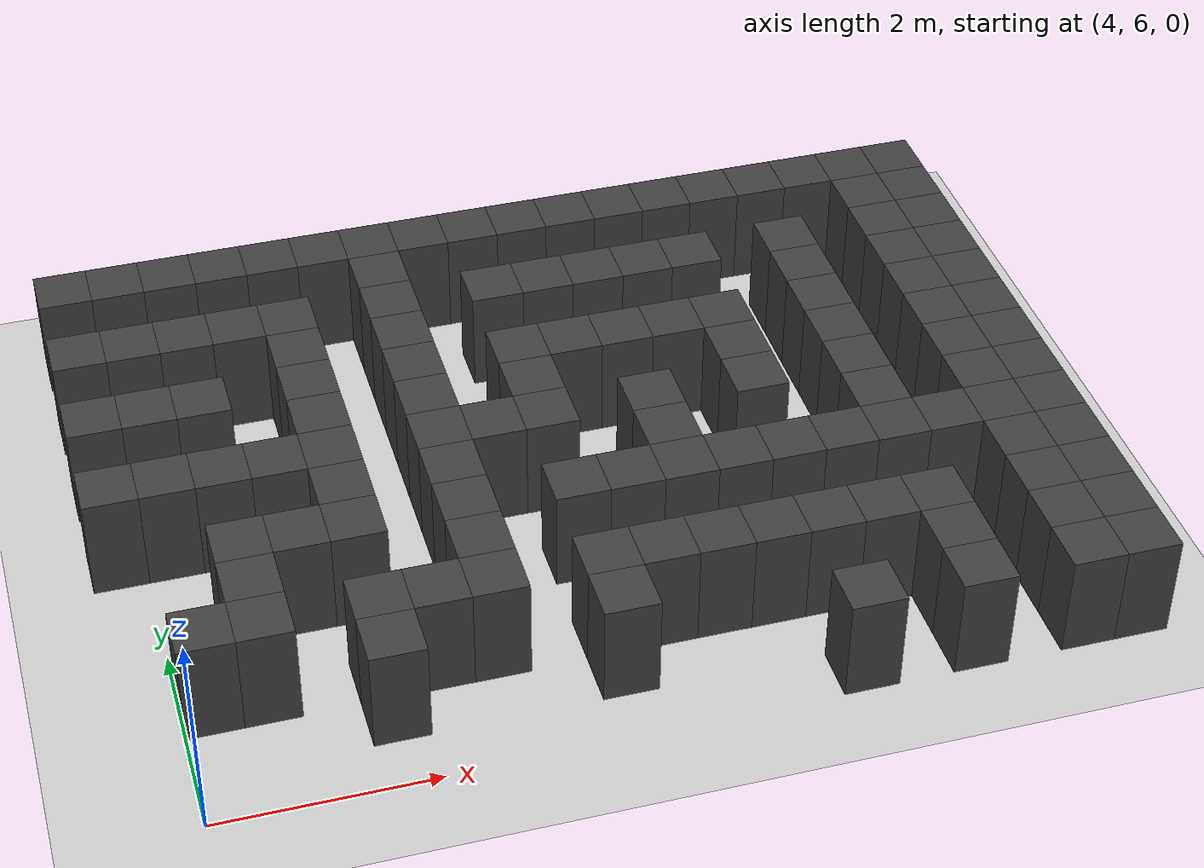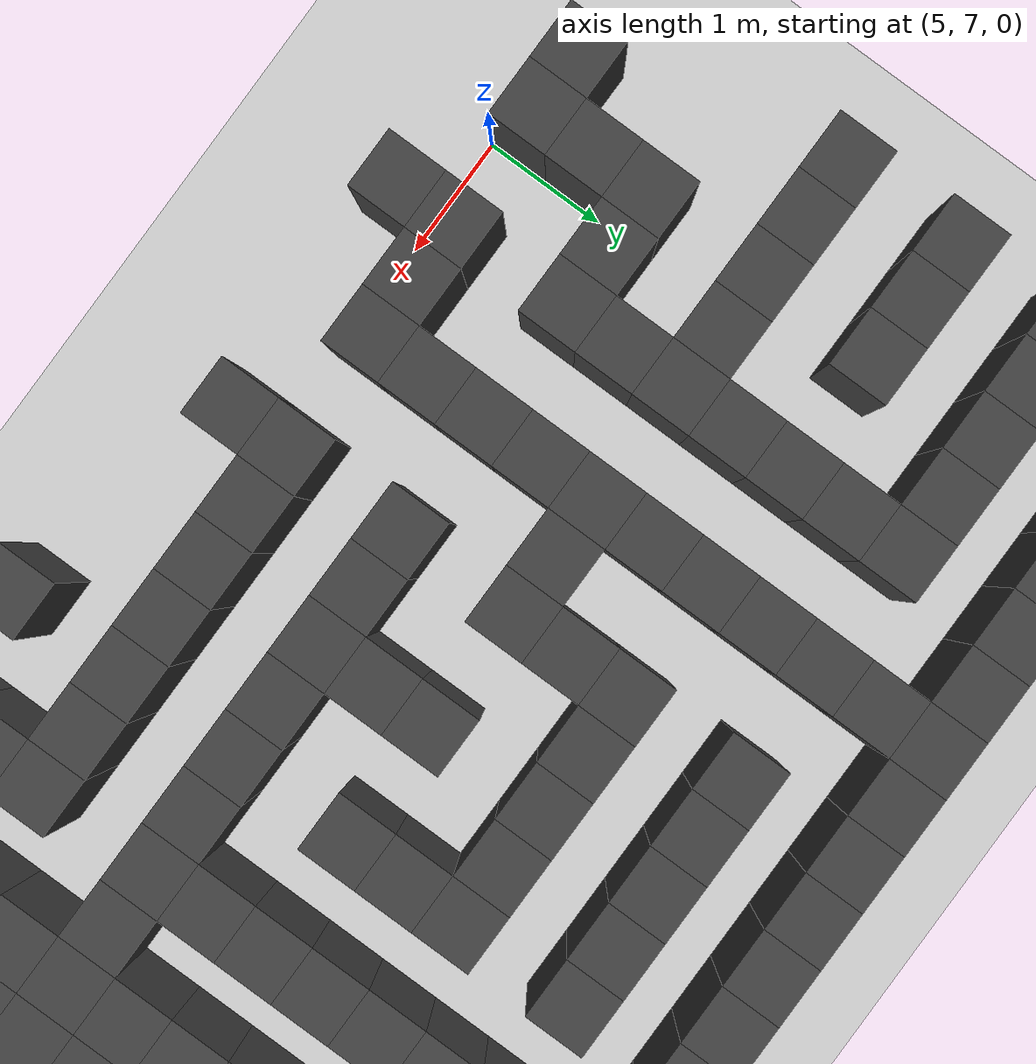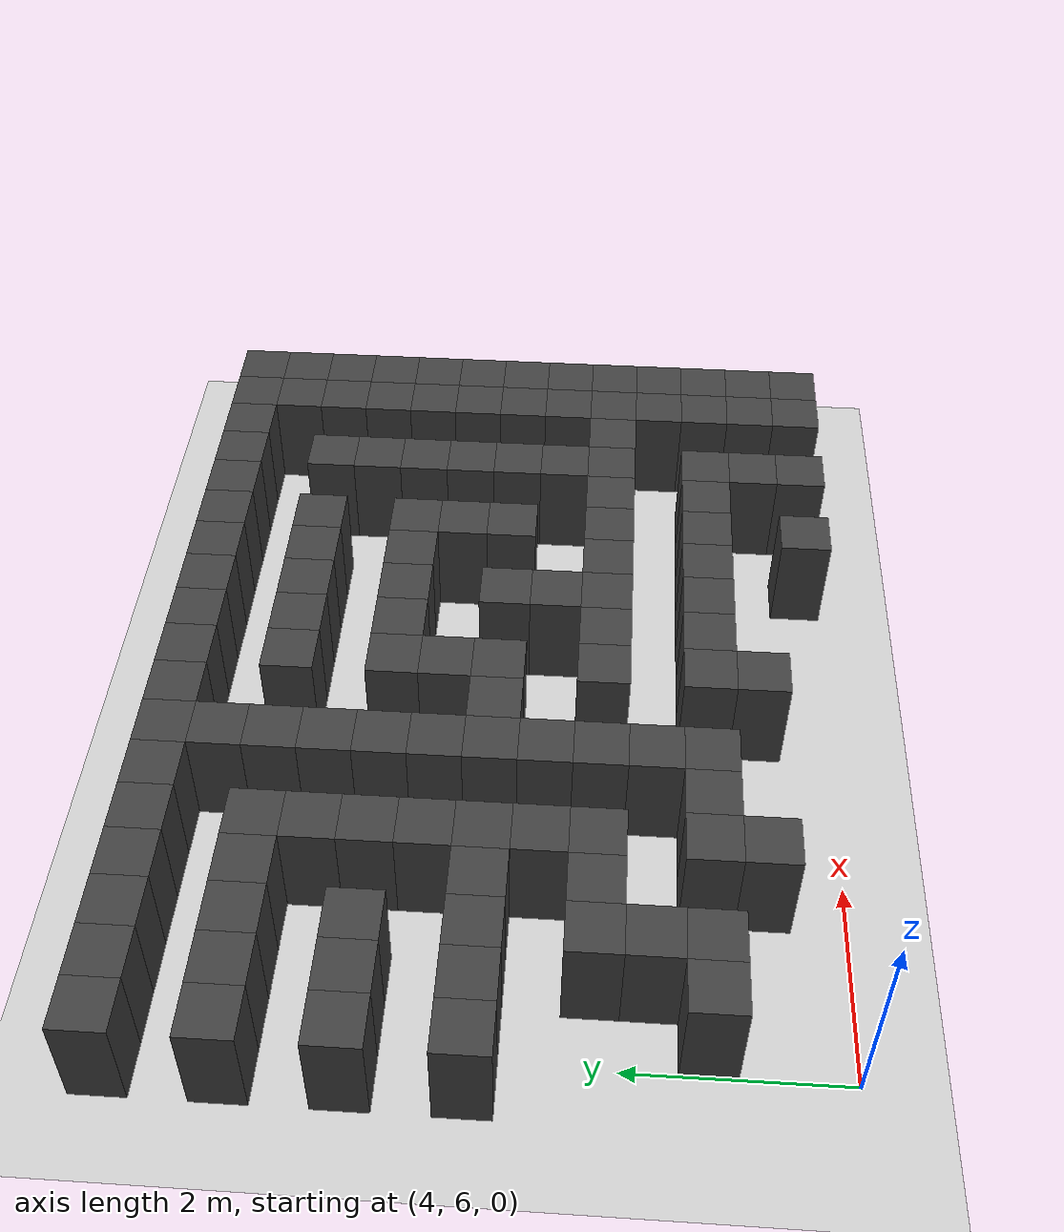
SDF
<sdf version="1.7">
 <world name="map_19217">
  <model name="ground_plane">
   <static>true</static>
   <link name="link">
    <collision name="collision">
     <geometry><plane><normal>0 0 1</normal><size>200 200</size></plane></geometry>
    </collision>
    <visual name="visual">
     <geometry><plane><normal>0 0 1</normal><size>200 200</size></plane></geometry>
     <material><ambient>0.8 0.8 0.8 1</ambient><diffuse>0.8 0.8 0.8 1</diffuse></material>
    </visual>
   </link>
  </model>
  <model name="maze_environment">
   <static>true</static>
   <link name="wall_32">
    <pose>3.750 12.250 0.500 0 0 0</pose>
    <collision name="col"><geometry><box><size>0.5 0.5 1.0</size></box></geometry></collision>
    <visual name="vis">
     <geometry><box><size>0.5 0.5 1.0</size></box></geometry>
     <material><ambient>0.15 0.15 0.15 1</ambient><diffuse>0.25 0.25 0.25 1</diffuse></material>
    </visual>
   </link>
   <link name="wall_33">
    <pose>4.250 12.250 0.500 0 0 0</pose>
    <collision name="col"><geometry><box><size>0.5 0.5 1.0</size></box></geometry></collision>
    <visual name="vis">
     <geometry><box><size>0.5 0.5 1.0</size></box></geometry>
     <material><ambient>0.15 0.15 0.15 1</ambient><diffuse>0.25 0.25 0.25 1</diffuse></material>
    </visual>
   </link>
   <link name="wall_34">
    <pose>4.750 12.250 0.500 0 0 0</pose>
    <collision name="col"><geometry><box><size>0.5 0.5 1.0</size></box></geometry></collision>
    <visual name="vis">
     <geometry><box><size>0.5 0.5 1.0</size></box></geometry>
     <material><ambient>0.15 0.15 0.15 1</ambient><diffuse>0.25 0.25 0.25 1</diffuse></material>
    </visual>
   </link>
   <link name="wall_35">
    <pose>5.250 12.250 0.500 0 0 0</pose>
    <collision name="col"><geometry><box><size>0.5 0.5 1.0</size></box></geometry></collision>
    <visual name="vis">
     <geometry><box><size>0.5 0.5 1.0</size></box></geometry>
     <material><ambient>0.15 0.15 0.15 1</ambient><diffuse>0.25 0.25 0.25 1</diffuse></material>
    </visual>
   </link>
   <link name="wall_36">
    <pose>5.750 12.250 0.500 0 0 0</pose>
    <collision name="col"><geometry><box><size>0.5 0.5 1.0</size></box></geometry></collision>
    <visual name="vis">
     <geometry><box><size>0.5 0.5 1.0</size></box></geometry>
     <material><ambient>0.15 0.15 0.15 1</ambient><diffuse>0.25 0.25 0.25 1</diffuse></material>
    </visual>
   </link>
   <link name="wall_37">
    <pose>6.250 12.250 0.500 0 0 0</pose>
    <collision name="col"><geometry><box><size>0.5 0.5 1.0</size></box></geometry></collision>
    <visual name="vis">
     <geometry><box><size>0.5 0.5 1.0</size></box></geometry>
     <material><ambient>0.15 0.15 0.15 1</ambient><diffuse>0.25 0.25 0.25 1</diffuse></material>
    </visual>
   </link>
   <link name="wall_38">
    <pose>6.750 12.250 0.500 0 0 0</pose>
    <collision name="col"><geometry><box><size>0.5 0.5 1.0</size></box></geometry></collision>
    <visual name="vis">
     <geometry><box><size>0.5 0.5 1.0</size></box></geometry>
     <material><ambient>0.15 0.15 0.15 1</ambient><diffuse>0.25 0.25 0.25 1</diffuse></material>
    </visual>
   </link>
   <link name="wall_39">
    <pose>7.250 12.250 0.500 0 0 0</pose>
    <collision name="col"><geometry><box><size>0.5 0.5 1.0</size></box></geometry></collision>
    <visual name="vis">
     <geometry><box><size>0.5 0.5 1.0</size></box></geometry>
     <material><ambient>0.15 0.15 0.15 1</ambient><diffuse>0.25 0.25 0.25 1</diffuse></material>
    </visual>
   </link>
   <link name="wall_40">
    <pose>7.750 12.250 0.500 0 0 0</pose>
    <collision name="col"><geometry><box><size>0.5 0.5 1.0</size></box></geometry></collision>
    <visual name="vis">
     <geometry><box><size>0.5 0.5 1.0</size></box></geometry>
     <material><ambient>0.15 0.15 0.15 1</ambient><diffuse>0.25 0.25 0.25 1</diffuse></material>
    </visual>
   </link>
   <link name="wall_41">
    <pose>8.250 12.250 0.500 0 0 0</pose>
    <collision name="col"><geometry><box><size>0.5 0.5 1.0</size></box></geometry></collision>
    <visual name="vis">
     <geometry><box><size>0.5 0.5 1.0</size></box></geometry>
     <material><ambient>0.15 0.15 0.15 1</ambient><diffuse>0.25 0.25 0.25 1</diffuse></material>
    </visual>
   </link>
   <link name="wall_42">
    <pose>8.750 12.250 0.500 0 0 0</pose>
    <collision name="col"><geometry><box><size>0.5 0.5 1.0</size></box></geometry></collision>
    <visual name="vis">
     <geometry><box><size>0.5 0.5 1.0</size></box></geometry>
     <material><ambient>0.15 0.15 0.15 1</ambient><diffuse>0.25 0.25 0.25 1</diffuse></material>
    </visual>
   </link>
   <link name="wall_43">
    <pose>9.250 12.250 0.500 0 0 0</pose>
    <collision name="col"><geometry><box><size>0.5 0.5 1.0</size></box></geometry></collision>
    <visual name="vis">
     <geometry><box><size>0.5 0.5 1.0</size></box></geometry>
     <material><ambient>0.15 0.15 0.15 1</ambient><diffuse>0.25 0.25 0.25 1</diffuse></material>
    </visual>
   </link>
   <link name="wall_44">
    <pose>9.750 12.250 0.500 0 0 0</pose>
    <collision name="col"><geometry><box><size>0.5 0.5 1.0</size></box></geometry></collision>
    <visual name="vis">
     <geometry><box><size>0.5 0.5 1.0</size></box></geometry>
     <material><ambient>0.15 0.15 0.15 1</ambient><diffuse>0.25 0.25 0.25 1</diffuse></material>
    </visual>
   </link>
   <link name="wall_45">
    <pose>10.250 12.250 0.500 0 0 0</pose>
    <collision name="col"><geometry><box><size>0.5 0.5 1.0</size></box></geometry></collision>
    <visual name="vis">
     <geometry><box><size>0.5 0.5 1.0</size></box></geometry>
     <material><ambient>0.15 0.15 0.15 1</ambient><diffuse>0.25 0.25 0.25 1</diffuse></material>
    </visual>
   </link>
   <link name="wall_46">
    <pose>10.750 12.250 0.500 0 0 0</pose>
    <collision name="col"><geometry><box><size>0.5 0.5 1.0</size></box></geometry></collision>
    <visual name="vis">
     <geometry><box><size>0.5 0.5 1.0</size></box></geometry>
     <material><ambient>0.15 0.15 0.15 1</ambient><diffuse>0.25 0.25 0.25 1</diffuse></material>
    </visual>
   </link>
   <link name="wall_47">
    <pose>11.250 12.250 0.500 0 0 0</pose>
    <collision name="col"><geometry><box><size>0.5 0.5 1.0</size></box></geometry></collision>
    <visual name="vis">
     <geometry><box><size>0.5 0.5 1.0</size></box></geometry>
     <material><ambient>0.15 0.15 0.15 1</ambient><diffuse>0.25 0.25 0.25 1</diffuse></material>
    </visual>
   </link>
   <link name="wall_48">
    <pose>11.750 12.250 0.500 0 0 0</pose>
    <collision name="col"><geometry><box><size>0.5 0.5 1.0</size></box></geometry></collision>
    <visual name="vis">
     <geometry><box><size>0.5 0.5 1.0</size></box></geometry>
     <material><ambient>0.15 0.15 0.15 1</ambient><diffuse>0.25 0.25 0.25 1</diffuse></material>
    </visual>
   </link>
   <link name="wall_49">
    <pose>12.250 12.250 0.500 0 0 0</pose>
    <collision name="col"><geometry><box><size>0.5 0.5 1.0</size></box></geometry></collision>
    <visual name="vis">
     <geometry><box><size>0.5 0.5 1.0</size></box></geometry>
     <material><ambient>0.15 0.15 0.15 1</ambient><diffuse>0.25 0.25 0.25 1</diffuse></material>
    </visual>
   </link>
   <link name="wall_56">
    <pose>6.750 11.750 0.500 0 0 0</pose>
    <collision name="col"><geometry><box><size>0.5 0.5 1.0</size></box></geometry></collision>
    <visual name="vis">
     <geometry><box><size>0.5 0.5 1.0</size></box></geometry>
     <material><ambient>0.15 0.15 0.15 1</ambient><diffuse>0.25 0.25 0.25 1</diffuse></material>
    </visual>
   </link>
   <link name="wall_57">
    <pose>11.750 11.750 0.500 0 0 0</pose>
    <collision name="col"><geometry><box><size>0.5 0.5 1.0</size></box></geometry></collision>
    <visual name="vis">
     <geometry><box><size>0.5 0.5 1.0</size></box></geometry>
     <material><ambient>0.15 0.15 0.15 1</ambient><diffuse>0.25 0.25 0.25 1</diffuse></material>
    </visual>
   </link>
   <link name="wall_58">
    <pose>12.250 11.750 0.500 0 0 0</pose>
    <collision name="col"><geometry><box><size>0.5 0.5 1.0</size></box></geometry></collision>
    <visual name="vis">
     <geometry><box><size>0.5 0.5 1.0</size></box></geometry>
     <material><ambient>0.15 0.15 0.15 1</ambient><diffuse>0.25 0.25 0.25 1</diffuse></material>
    </visual>
   </link>
   <link name="wall_78">
    <pose>3.750 11.250 0.500 0 0 0</pose>
    <collision name="col"><geometry><box><size>0.5 0.5 1.0</size></box></geometry></collision>
    <visual name="vis">
     <geometry><box><size>0.5 0.5 1.0</size></box></geometry>
     <material><ambient>0.15 0.15 0.15 1</ambient><diffuse>0.25 0.25 0.25 1</diffuse></material>
    </visual>
   </link>
   <link name="wall_79">
    <pose>4.250 11.250 0.500 0 0 0</pose>
    <collision name="col"><geometry><box><size>0.5 0.5 1.0</size></box></geometry></collision>
    <visual name="vis">
     <geometry><box><size>0.5 0.5 1.0</size></box></geometry>
     <material><ambient>0.15 0.15 0.15 1</ambient><diffuse>0.25 0.25 0.25 1</diffuse></material>
    </visual>
   </link>
   <link name="wall_80">
    <pose>4.750 11.250 0.500 0 0 0</pose>
    <collision name="col"><geometry><box><size>0.5 0.5 1.0</size></box></geometry></collision>
    <visual name="vis">
     <geometry><box><size>0.5 0.5 1.0</size></box></geometry>
     <material><ambient>0.15 0.15 0.15 1</ambient><diffuse>0.25 0.25 0.25 1</diffuse></material>
    </visual>
   </link>
   <link name="wall_81">
    <pose>5.250 11.250 0.500 0 0 0</pose>
    <collision name="col"><geometry><box><size>0.5 0.5 1.0</size></box></geometry></collision>
    <visual name="vis">
     <geometry><box><size>0.5 0.5 1.0</size></box></geometry>
     <material><ambient>0.15 0.15 0.15 1</ambient><diffuse>0.25 0.25 0.25 1</diffuse></material>
    </visual>
   </link>
   <link name="wall_82">
    <pose>5.750 11.250 0.500 0 0 0</pose>
    <collision name="col"><geometry><box><size>0.5 0.5 1.0</size></box></geometry></collision>
    <visual name="vis">
     <geometry><box><size>0.5 0.5 1.0</size></box></geometry>
     <material><ambient>0.15 0.15 0.15 1</ambient><diffuse>0.25 0.25 0.25 1</diffuse></material>
    </visual>
   </link>
   <link name="wall_83">
    <pose>6.750 11.250 0.500 0 0 0</pose>
    <collision name="col"><geometry><box><size>0.5 0.5 1.0</size></box></geometry></collision>
    <visual name="vis">
     <geometry><box><size>0.5 0.5 1.0</size></box></geometry>
     <material><ambient>0.15 0.15 0.15 1</ambient><diffuse>0.25 0.25 0.25 1</diffuse></material>
    </visual>
   </link>
   <link name="wall_84">
    <pose>7.750 11.250 0.500 0 0 0</pose>
    <collision name="col"><geometry><box><size>0.5 0.5 1.0</size></box></geometry></collision>
    <visual name="vis">
     <geometry><box><size>0.5 0.5 1.0</size></box></geometry>
     <material><ambient>0.15 0.15 0.15 1</ambient><diffuse>0.25 0.25 0.25 1</diffuse></material>
    </visual>
   </link>
   <link name="wall_85">
    <pose>8.250 11.250 0.500 0 0 0</pose>
    <collision name="col"><geometry><box><size>0.5 0.5 1.0</size></box></geometry></collision>
    <visual name="vis">
     <geometry><box><size>0.5 0.5 1.0</size></box></geometry>
     <material><ambient>0.15 0.15 0.15 1</ambient><diffuse>0.25 0.25 0.25 1</diffuse></material>
    </visual>
   </link>
   <link name="wall_86">
    <pose>8.750 11.250 0.500 0 0 0</pose>
    <collision name="col"><geometry><box><size>0.5 0.5 1.0</size></box></geometry></collision>
    <visual name="vis">
     <geometry><box><size>0.5 0.5 1.0</size></box></geometry>
     <material><ambient>0.15 0.15 0.15 1</ambient><diffuse>0.25 0.25 0.25 1</diffuse></material>
    </visual>
   </link>
   <link name="wall_87">
    <pose>9.250 11.250 0.500 0 0 0</pose>
    <collision name="col"><geometry><box><size>0.5 0.5 1.0</size></box></geometry></collision>
    <visual name="vis">
     <geometry><box><size>0.5 0.5 1.0</size></box></geometry>
     <material><ambient>0.15 0.15 0.15 1</ambient><diffuse>0.25 0.25 0.25 1</diffuse></material>
    </visual>
   </link>
   <link name="wall_88">
    <pose>9.750 11.250 0.500 0 0 0</pose>
    <collision name="col"><geometry><box><size>0.5 0.5 1.0</size></box></geometry></collision>
    <visual name="vis">
     <geometry><box><size>0.5 0.5 1.0</size></box></geometry>
     <material><ambient>0.15 0.15 0.15 1</ambient><diffuse>0.25 0.25 0.25 1</diffuse></material>
    </visual>
   </link>
   <link name="wall_89">
    <pose>10.750 11.250 0.500 0 0 0</pose>
    <collision name="col"><geometry><box><size>0.5 0.5 1.0</size></box></geometry></collision>
    <visual name="vis">
     <geometry><box><size>0.5 0.5 1.0</size></box></geometry>
     <material><ambient>0.15 0.15 0.15 1</ambient><diffuse>0.25 0.25 0.25 1</diffuse></material>
    </visual>
   </link>
   <link name="wall_90">
    <pose>11.750 11.250 0.500 0 0 0</pose>
    <collision name="col"><geometry><box><size>0.5 0.5 1.0</size></box></geometry></collision>
    <visual name="vis">
     <geometry><box><size>0.5 0.5 1.0</size></box></geometry>
     <material><ambient>0.15 0.15 0.15 1</ambient><diffuse>0.25 0.25 0.25 1</diffuse></material>
    </visual>
   </link>
   <link name="wall_91">
    <pose>12.250 11.250 0.500 0 0 0</pose>
    <collision name="col"><geometry><box><size>0.5 0.5 1.0</size></box></geometry></collision>
    <visual name="vis">
     <geometry><box><size>0.5 0.5 1.0</size></box></geometry>
     <material><ambient>0.15 0.15 0.15 1</ambient><diffuse>0.25 0.25 0.25 1</diffuse></material>
    </visual>
   </link>
   <link name="wall_103">
    <pose>5.750 10.750 0.500 0 0 0</pose>
    <collision name="col"><geometry><box><size>0.5 0.5 1.0</size></box></geometry></collision>
    <visual name="vis">
     <geometry><box><size>0.5 0.5 1.0</size></box></geometry>
     <material><ambient>0.15 0.15 0.15 1</ambient><diffuse>0.25 0.25 0.25 1</diffuse></material>
    </visual>
   </link>
   <link name="wall_104">
    <pose>6.750 10.750 0.500 0 0 0</pose>
    <collision name="col"><geometry><box><size>0.5 0.5 1.0</size></box></geometry></collision>
    <visual name="vis">
     <geometry><box><size>0.5 0.5 1.0</size></box></geometry>
     <material><ambient>0.15 0.15 0.15 1</ambient><diffuse>0.25 0.25 0.25 1</diffuse></material>
    </visual>
   </link>
   <link name="wall_105">
    <pose>10.750 10.750 0.500 0 0 0</pose>
    <collision name="col"><geometry><box><size>0.5 0.5 1.0</size></box></geometry></collision>
    <visual name="vis">
     <geometry><box><size>0.5 0.5 1.0</size></box></geometry>
     <material><ambient>0.15 0.15 0.15 1</ambient><diffuse>0.25 0.25 0.25 1</diffuse></material>
    </visual>
   </link>
   <link name="wall_106">
    <pose>11.750 10.750 0.500 0 0 0</pose>
    <collision name="col"><geometry><box><size>0.5 0.5 1.0</size></box></geometry></collision>
    <visual name="vis">
     <geometry><box><size>0.5 0.5 1.0</size></box></geometry>
     <material><ambient>0.15 0.15 0.15 1</ambient><diffuse>0.25 0.25 0.25 1</diffuse></material>
    </visual>
   </link>
   <link name="wall_107">
    <pose>12.250 10.750 0.500 0 0 0</pose>
    <collision name="col"><geometry><box><size>0.5 0.5 1.0</size></box></geometry></collision>
    <visual name="vis">
     <geometry><box><size>0.5 0.5 1.0</size></box></geometry>
     <material><ambient>0.15 0.15 0.15 1</ambient><diffuse>0.25 0.25 0.25 1</diffuse></material>
    </visual>
   </link>
   <link name="wall_132">
    <pose>3.750 10.250 0.500 0 0 0</pose>
    <collision name="col"><geometry><box><size>0.5 0.5 1.0</size></box></geometry></collision>
    <visual name="vis">
     <geometry><box><size>0.5 0.5 1.0</size></box></geometry>
     <material><ambient>0.15 0.15 0.15 1</ambient><diffuse>0.25 0.25 0.25 1</diffuse></material>
    </visual>
   </link>
   <link name="wall_133">
    <pose>4.250 10.250 0.500 0 0 0</pose>
    <collision name="col"><geometry><box><size>0.5 0.5 1.0</size></box></geometry></collision>
    <visual name="vis">
     <geometry><box><size>0.5 0.5 1.0</size></box></geometry>
     <material><ambient>0.15 0.15 0.15 1</ambient><diffuse>0.25 0.25 0.25 1</diffuse></material>
    </visual>
   </link>
   <link name="wall_134">
    <pose>4.750 10.250 0.500 0 0 0</pose>
    <collision name="col"><geometry><box><size>0.5 0.5 1.0</size></box></geometry></collision>
    <visual name="vis">
     <geometry><box><size>0.5 0.5 1.0</size></box></geometry>
     <material><ambient>0.15 0.15 0.15 1</ambient><diffuse>0.25 0.25 0.25 1</diffuse></material>
    </visual>
   </link>
   <link name="wall_135">
    <pose>5.750 10.250 0.500 0 0 0</pose>
    <collision name="col"><geometry><box><size>0.5 0.5 1.0</size></box></geometry></collision>
    <visual name="vis">
     <geometry><box><size>0.5 0.5 1.0</size></box></geometry>
     <material><ambient>0.15 0.15 0.15 1</ambient><diffuse>0.25 0.25 0.25 1</diffuse></material>
    </visual>
   </link>
   <link name="wall_136">
    <pose>6.750 10.250 0.500 0 0 0</pose>
    <collision name="col"><geometry><box><size>0.5 0.5 1.0</size></box></geometry></collision>
    <visual name="vis">
     <geometry><box><size>0.5 0.5 1.0</size></box></geometry>
     <material><ambient>0.15 0.15 0.15 1</ambient><diffuse>0.25 0.25 0.25 1</diffuse></material>
    </visual>
   </link>
   <link name="wall_137">
    <pose>7.750 10.250 0.500 0 0 0</pose>
    <collision name="col"><geometry><box><size>0.5 0.5 1.0</size></box></geometry></collision>
    <visual name="vis">
     <geometry><box><size>0.5 0.5 1.0</size></box></geometry>
     <material><ambient>0.15 0.15 0.15 1</ambient><diffuse>0.25 0.25 0.25 1</diffuse></material>
    </visual>
   </link>
   <link name="wall_138">
    <pose>8.250 10.250 0.500 0 0 0</pose>
    <collision name="col"><geometry><box><size>0.5 0.5 1.0</size></box></geometry></collision>
    <visual name="vis">
     <geometry><box><size>0.5 0.5 1.0</size></box></geometry>
     <material><ambient>0.15 0.15 0.15 1</ambient><diffuse>0.25 0.25 0.25 1</diffuse></material>
    </visual>
   </link>
   <link name="wall_139">
    <pose>8.750 10.250 0.500 0 0 0</pose>
    <collision name="col"><geometry><box><size>0.5 0.5 1.0</size></box></geometry></collision>
    <visual name="vis">
     <geometry><box><size>0.5 0.5 1.0</size></box></geometry>
     <material><ambient>0.15 0.15 0.15 1</ambient><diffuse>0.25 0.25 0.25 1</diffuse></material>
    </visual>
   </link>
   <link name="wall_140">
    <pose>9.250 10.250 0.500 0 0 0</pose>
    <collision name="col"><geometry><box><size>0.5 0.5 1.0</size></box></geometry></collision>
    <visual name="vis">
     <geometry><box><size>0.5 0.5 1.0</size></box></geometry>
     <material><ambient>0.15 0.15 0.15 1</ambient><diffuse>0.25 0.25 0.25 1</diffuse></material>
    </visual>
   </link>
   <link name="wall_141">
    <pose>9.750 10.250 0.500 0 0 0</pose>
    <collision name="col"><geometry><box><size>0.5 0.5 1.0</size></box></geometry></collision>
    <visual name="vis">
     <geometry><box><size>0.5 0.5 1.0</size></box></geometry>
     <material><ambient>0.15 0.15 0.15 1</ambient><diffuse>0.25 0.25 0.25 1</diffuse></material>
    </visual>
   </link>
   <link name="wall_142">
    <pose>10.750 10.250 0.500 0 0 0</pose>
    <collision name="col"><geometry><box><size>0.5 0.5 1.0</size></box></geometry></collision>
    <visual name="vis">
     <geometry><box><size>0.5 0.5 1.0</size></box></geometry>
     <material><ambient>0.15 0.15 0.15 1</ambient><diffuse>0.25 0.25 0.25 1</diffuse></material>
    </visual>
   </link>
   <link name="wall_143">
    <pose>11.750 10.250 0.500 0 0 0</pose>
    <collision name="col"><geometry><box><size>0.5 0.5 1.0</size></box></geometry></collision>
    <visual name="vis">
     <geometry><box><size>0.5 0.5 1.0</size></box></geometry>
     <material><ambient>0.15 0.15 0.15 1</ambient><diffuse>0.25 0.25 0.25 1</diffuse></material>
    </visual>
   </link>
   <link name="wall_144">
    <pose>12.250 10.250 0.500 0 0 0</pose>
    <collision name="col"><geometry><box><size>0.5 0.5 1.0</size></box></geometry></collision>
    <visual name="vis">
     <geometry><box><size>0.5 0.5 1.0</size></box></geometry>
     <material><ambient>0.15 0.15 0.15 1</ambient><diffuse>0.25 0.25 0.25 1</diffuse></material>
    </visual>
   </link>
   <link name="wall_153">
    <pose>5.750 9.750 0.500 0 0 0</pose>
    <collision name="col"><geometry><box><size>0.5 0.5 1.0</size></box></geometry></collision>
    <visual name="vis">
     <geometry><box><size>0.5 0.5 1.0</size></box></geometry>
     <material><ambient>0.15 0.15 0.15 1</ambient><diffuse>0.25 0.25 0.25 1</diffuse></material>
    </visual>
   </link>
   <link name="wall_154">
    <pose>6.750 9.750 0.500 0 0 0</pose>
    <collision name="col"><geometry><box><size>0.5 0.5 1.0</size></box></geometry></collision>
    <visual name="vis">
     <geometry><box><size>0.5 0.5 1.0</size></box></geometry>
     <material><ambient>0.15 0.15 0.15 1</ambient><diffuse>0.25 0.25 0.25 1</diffuse></material>
    </visual>
   </link>
   <link name="wall_155">
    <pose>7.750 9.750 0.500 0 0 0</pose>
    <collision name="col"><geometry><box><size>0.5 0.5 1.0</size></box></geometry></collision>
    <visual name="vis">
     <geometry><box><size>0.5 0.5 1.0</size></box></geometry>
     <material><ambient>0.15 0.15 0.15 1</ambient><diffuse>0.25 0.25 0.25 1</diffuse></material>
    </visual>
   </link>
   <link name="wall_156">
    <pose>9.750 9.750 0.500 0 0 0</pose>
    <collision name="col"><geometry><box><size>0.5 0.5 1.0</size></box></geometry></collision>
    <visual name="vis">
     <geometry><box><size>0.5 0.5 1.0</size></box></geometry>
     <material><ambient>0.15 0.15 0.15 1</ambient><diffuse>0.25 0.25 0.25 1</diffuse></material>
    </visual>
   </link>
   <link name="wall_157">
    <pose>10.750 9.750 0.500 0 0 0</pose>
    <collision name="col"><geometry><box><size>0.5 0.5 1.0</size></box></geometry></collision>
    <visual name="vis">
     <geometry><box><size>0.5 0.5 1.0</size></box></geometry>
     <material><ambient>0.15 0.15 0.15 1</ambient><diffuse>0.25 0.25 0.25 1</diffuse></material>
    </visual>
   </link>
   <link name="wall_158">
    <pose>11.750 9.750 0.500 0 0 0</pose>
    <collision name="col"><geometry><box><size>0.5 0.5 1.0</size></box></geometry></collision>
    <visual name="vis">
     <geometry><box><size>0.5 0.5 1.0</size></box></geometry>
     <material><ambient>0.15 0.15 0.15 1</ambient><diffuse>0.25 0.25 0.25 1</diffuse></material>
    </visual>
   </link>
   <link name="wall_159">
    <pose>12.250 9.750 0.500 0 0 0</pose>
    <collision name="col"><geometry><box><size>0.5 0.5 1.0</size></box></geometry></collision>
    <visual name="vis">
     <geometry><box><size>0.5 0.5 1.0</size></box></geometry>
     <material><ambient>0.15 0.15 0.15 1</ambient><diffuse>0.25 0.25 0.25 1</diffuse></material>
    </visual>
   </link>
   <link name="wall_185">
    <pose>3.750 9.250 0.500 0 0 0</pose>
    <collision name="col"><geometry><box><size>0.5 0.5 1.0</size></box></geometry></collision>
    <visual name="vis">
     <geometry><box><size>0.5 0.5 1.0</size></box></geometry>
     <material><ambient>0.15 0.15 0.15 1</ambient><diffuse>0.25 0.25 0.25 1</diffuse></material>
    </visual>
   </link>
   <link name="wall_186">
    <pose>4.250 9.250 0.500 0 0 0</pose>
    <collision name="col"><geometry><box><size>0.5 0.5 1.0</size></box></geometry></collision>
    <visual name="vis">
     <geometry><box><size>0.5 0.5 1.0</size></box></geometry>
     <material><ambient>0.15 0.15 0.15 1</ambient><diffuse>0.25 0.25 0.25 1</diffuse></material>
    </visual>
   </link>
   <link name="wall_187">
    <pose>4.750 9.250 0.500 0 0 0</pose>
    <collision name="col"><geometry><box><size>0.5 0.5 1.0</size></box></geometry></collision>
    <visual name="vis">
     <geometry><box><size>0.5 0.5 1.0</size></box></geometry>
     <material><ambient>0.15 0.15 0.15 1</ambient><diffuse>0.25 0.25 0.25 1</diffuse></material>
    </visual>
   </link>
   <link name="wall_188">
    <pose>5.250 9.250 0.500 0 0 0</pose>
    <collision name="col"><geometry><box><size>0.5 0.5 1.0</size></box></geometry></collision>
    <visual name="vis">
     <geometry><box><size>0.5 0.5 1.0</size></box></geometry>
     <material><ambient>0.15 0.15 0.15 1</ambient><diffuse>0.25 0.25 0.25 1</diffuse></material>
    </visual>
   </link>
   <link name="wall_189">
    <pose>5.750 9.250 0.500 0 0 0</pose>
    <collision name="col"><geometry><box><size>0.5 0.5 1.0</size></box></geometry></collision>
    <visual name="vis">
     <geometry><box><size>0.5 0.5 1.0</size></box></geometry>
     <material><ambient>0.15 0.15 0.15 1</ambient><diffuse>0.25 0.25 0.25 1</diffuse></material>
    </visual>
   </link>
   <link name="wall_190">
    <pose>6.750 9.250 0.500 0 0 0</pose>
    <collision name="col"><geometry><box><size>0.5 0.5 1.0</size></box></geometry></collision>
    <visual name="vis">
     <geometry><box><size>0.5 0.5 1.0</size></box></geometry>
     <material><ambient>0.15 0.15 0.15 1</ambient><diffuse>0.25 0.25 0.25 1</diffuse></material>
    </visual>
   </link>
   <link name="wall_191">
    <pose>7.250 9.250 0.500 0 0 0</pose>
    <collision name="col"><geometry><box><size>0.5 0.5 1.0</size></box></geometry></collision>
    <visual name="vis">
     <geometry><box><size>0.5 0.5 1.0</size></box></geometry>
     <material><ambient>0.15 0.15 0.15 1</ambient><diffuse>0.25 0.25 0.25 1</diffuse></material>
    </visual>
   </link>
   <link name="wall_192">
    <pose>7.750 9.250 0.500 0 0 0</pose>
    <collision name="col"><geometry><box><size>0.5 0.5 1.0</size></box></geometry></collision>
    <visual name="vis">
     <geometry><box><size>0.5 0.5 1.0</size></box></geometry>
     <material><ambient>0.15 0.15 0.15 1</ambient><diffuse>0.25 0.25 0.25 1</diffuse></material>
    </visual>
   </link>
   <link name="wall_193">
    <pose>8.750 9.250 0.500 0 0 0</pose>
    <collision name="col"><geometry><box><size>0.5 0.5 1.0</size></box></geometry></collision>
    <visual name="vis">
     <geometry><box><size>0.5 0.5 1.0</size></box></geometry>
     <material><ambient>0.15 0.15 0.15 1</ambient><diffuse>0.25 0.25 0.25 1</diffuse></material>
    </visual>
   </link>
   <link name="wall_194">
    <pose>9.750 9.250 0.500 0 0 0</pose>
    <collision name="col"><geometry><box><size>0.5 0.5 1.0</size></box></geometry></collision>
    <visual name="vis">
     <geometry><box><size>0.5 0.5 1.0</size></box></geometry>
     <material><ambient>0.15 0.15 0.15 1</ambient><diffuse>0.25 0.25 0.25 1</diffuse></material>
    </visual>
   </link>
   <link name="wall_195">
    <pose>10.750 9.250 0.500 0 0 0</pose>
    <collision name="col"><geometry><box><size>0.5 0.5 1.0</size></box></geometry></collision>
    <visual name="vis">
     <geometry><box><size>0.5 0.5 1.0</size></box></geometry>
     <material><ambient>0.15 0.15 0.15 1</ambient><diffuse>0.25 0.25 0.25 1</diffuse></material>
    </visual>
   </link>
   <link name="wall_196">
    <pose>11.750 9.250 0.500 0 0 0</pose>
    <collision name="col"><geometry><box><size>0.5 0.5 1.0</size></box></geometry></collision>
    <visual name="vis">
     <geometry><box><size>0.5 0.5 1.0</size></box></geometry>
     <material><ambient>0.15 0.15 0.15 1</ambient><diffuse>0.25 0.25 0.25 1</diffuse></material>
    </visual>
   </link>
   <link name="wall_197">
    <pose>12.250 9.250 0.500 0 0 0</pose>
    <collision name="col"><geometry><box><size>0.5 0.5 1.0</size></box></geometry></collision>
    <visual name="vis">
     <geometry><box><size>0.5 0.5 1.0</size></box></geometry>
     <material><ambient>0.15 0.15 0.15 1</ambient><diffuse>0.25 0.25 0.25 1</diffuse></material>
    </visual>
   </link>
   <link name="wall_207">
    <pose>5.750 8.750 0.500 0 0 0</pose>
    <collision name="col"><geometry><box><size>0.5 0.5 1.0</size></box></geometry></collision>
    <visual name="vis">
     <geometry><box><size>0.5 0.5 1.0</size></box></geometry>
     <material><ambient>0.15 0.15 0.15 1</ambient><diffuse>0.25 0.25 0.25 1</diffuse></material>
    </visual>
   </link>
   <link name="wall_208">
    <pose>6.750 8.750 0.500 0 0 0</pose>
    <collision name="col"><geometry><box><size>0.5 0.5 1.0</size></box></geometry></collision>
    <visual name="vis">
     <geometry><box><size>0.5 0.5 1.0</size></box></geometry>
     <material><ambient>0.15 0.15 0.15 1</ambient><diffuse>0.25 0.25 0.25 1</diffuse></material>
    </visual>
   </link>
   <link name="wall_209">
    <pose>8.750 8.750 0.500 0 0 0</pose>
    <collision name="col"><geometry><box><size>0.5 0.5 1.0</size></box></geometry></collision>
    <visual name="vis">
     <geometry><box><size>0.5 0.5 1.0</size></box></geometry>
     <material><ambient>0.15 0.15 0.15 1</ambient><diffuse>0.25 0.25 0.25 1</diffuse></material>
    </visual>
   </link>
   <link name="wall_210">
    <pose>10.750 8.750 0.500 0 0 0</pose>
    <collision name="col"><geometry><box><size>0.5 0.5 1.0</size></box></geometry></collision>
    <visual name="vis">
     <geometry><box><size>0.5 0.5 1.0</size></box></geometry>
     <material><ambient>0.15 0.15 0.15 1</ambient><diffuse>0.25 0.25 0.25 1</diffuse></material>
    </visual>
   </link>
   <link name="wall_211">
    <pose>11.750 8.750 0.500 0 0 0</pose>
    <collision name="col"><geometry><box><size>0.5 0.5 1.0</size></box></geometry></collision>
    <visual name="vis">
     <geometry><box><size>0.5 0.5 1.0</size></box></geometry>
     <material><ambient>0.15 0.15 0.15 1</ambient><diffuse>0.25 0.25 0.25 1</diffuse></material>
    </visual>
   </link>
   <link name="wall_212">
    <pose>12.250 8.750 0.500 0 0 0</pose>
    <collision name="col"><geometry><box><size>0.5 0.5 1.0</size></box></geometry></collision>
    <visual name="vis">
     <geometry><box><size>0.5 0.5 1.0</size></box></geometry>
     <material><ambient>0.15 0.15 0.15 1</ambient><diffuse>0.25 0.25 0.25 1</diffuse></material>
    </visual>
   </link>
   <link name="wall_234">
    <pose>4.750 8.250 0.500 0 0 0</pose>
    <collision name="col"><geometry><box><size>0.5 0.5 1.0</size></box></geometry></collision>
    <visual name="vis">
     <geometry><box><size>0.5 0.5 1.0</size></box></geometry>
     <material><ambient>0.15 0.15 0.15 1</ambient><diffuse>0.25 0.25 0.25 1</diffuse></material>
    </visual>
   </link>
   <link name="wall_235">
    <pose>5.250 8.250 0.500 0 0 0</pose>
    <collision name="col"><geometry><box><size>0.5 0.5 1.0</size></box></geometry></collision>
    <visual name="vis">
     <geometry><box><size>0.5 0.5 1.0</size></box></geometry>
     <material><ambient>0.15 0.15 0.15 1</ambient><diffuse>0.25 0.25 0.25 1</diffuse></material>
    </visual>
   </link>
   <link name="wall_236">
    <pose>5.750 8.250 0.500 0 0 0</pose>
    <collision name="col"><geometry><box><size>0.5 0.5 1.0</size></box></geometry></collision>
    <visual name="vis">
     <geometry><box><size>0.5 0.5 1.0</size></box></geometry>
     <material><ambient>0.15 0.15 0.15 1</ambient><diffuse>0.25 0.25 0.25 1</diffuse></material>
    </visual>
   </link>
   <link name="wall_237">
    <pose>6.750 8.250 0.500 0 0 0</pose>
    <collision name="col"><geometry><box><size>0.5 0.5 1.0</size></box></geometry></collision>
    <visual name="vis">
     <geometry><box><size>0.5 0.5 1.0</size></box></geometry>
     <material><ambient>0.15 0.15 0.15 1</ambient><diffuse>0.25 0.25 0.25 1</diffuse></material>
    </visual>
   </link>
   <link name="wall_238">
    <pose>7.750 8.250 0.500 0 0 0</pose>
    <collision name="col"><geometry><box><size>0.5 0.5 1.0</size></box></geometry></collision>
    <visual name="vis">
     <geometry><box><size>0.5 0.5 1.0</size></box></geometry>
     <material><ambient>0.15 0.15 0.15 1</ambient><diffuse>0.25 0.25 0.25 1</diffuse></material>
    </visual>
   </link>
   <link name="wall_239">
    <pose>8.250 8.250 0.500 0 0 0</pose>
    <collision name="col"><geometry><box><size>0.5 0.5 1.0</size></box></geometry></collision>
    <visual name="vis">
     <geometry><box><size>0.5 0.5 1.0</size></box></geometry>
     <material><ambient>0.15 0.15 0.15 1</ambient><diffuse>0.25 0.25 0.25 1</diffuse></material>
    </visual>
   </link>
   <link name="wall_240">
    <pose>8.750 8.250 0.500 0 0 0</pose>
    <collision name="col"><geometry><box><size>0.5 0.5 1.0</size></box></geometry></collision>
    <visual name="vis">
     <geometry><box><size>0.5 0.5 1.0</size></box></geometry>
     <material><ambient>0.15 0.15 0.15 1</ambient><diffuse>0.25 0.25 0.25 1</diffuse></material>
    </visual>
   </link>
   <link name="wall_241">
    <pose>9.250 8.250 0.500 0 0 0</pose>
    <collision name="col"><geometry><box><size>0.5 0.5 1.0</size></box></geometry></collision>
    <visual name="vis">
     <geometry><box><size>0.5 0.5 1.0</size></box></geometry>
     <material><ambient>0.15 0.15 0.15 1</ambient><diffuse>0.25 0.25 0.25 1</diffuse></material>
    </visual>
   </link>
   <link name="wall_242">
    <pose>9.750 8.250 0.500 0 0 0</pose>
    <collision name="col"><geometry><box><size>0.5 0.5 1.0</size></box></geometry></collision>
    <visual name="vis">
     <geometry><box><size>0.5 0.5 1.0</size></box></geometry>
     <material><ambient>0.15 0.15 0.15 1</ambient><diffuse>0.25 0.25 0.25 1</diffuse></material>
    </visual>
   </link>
   <link name="wall_243">
    <pose>10.250 8.250 0.500 0 0 0</pose>
    <collision name="col"><geometry><box><size>0.5 0.5 1.0</size></box></geometry></collision>
    <visual name="vis">
     <geometry><box><size>0.5 0.5 1.0</size></box></geometry>
     <material><ambient>0.15 0.15 0.15 1</ambient><diffuse>0.25 0.25 0.25 1</diffuse></material>
    </visual>
   </link>
   <link name="wall_244">
    <pose>10.750 8.250 0.500 0 0 0</pose>
    <collision name="col"><geometry><box><size>0.5 0.5 1.0</size></box></geometry></collision>
    <visual name="vis">
     <geometry><box><size>0.5 0.5 1.0</size></box></geometry>
     <material><ambient>0.15 0.15 0.15 1</ambient><diffuse>0.25 0.25 0.25 1</diffuse></material>
    </visual>
   </link>
   <link name="wall_245">
    <pose>11.250 8.250 0.500 0 0 0</pose>
    <collision name="col"><geometry><box><size>0.5 0.5 1.0</size></box></geometry></collision>
    <visual name="vis">
     <geometry><box><size>0.5 0.5 1.0</size></box></geometry>
     <material><ambient>0.15 0.15 0.15 1</ambient><diffuse>0.25 0.25 0.25 1</diffuse></material>
    </visual>
   </link>
   <link name="wall_246">
    <pose>11.750 8.250 0.500 0 0 0</pose>
    <collision name="col"><geometry><box><size>0.5 0.5 1.0</size></box></geometry></collision>
    <visual name="vis">
     <geometry><box><size>0.5 0.5 1.0</size></box></geometry>
     <material><ambient>0.15 0.15 0.15 1</ambient><diffuse>0.25 0.25 0.25 1</diffuse></material>
    </visual>
   </link>
   <link name="wall_247">
    <pose>12.250 8.250 0.500 0 0 0</pose>
    <collision name="col"><geometry><box><size>0.5 0.5 1.0</size></box></geometry></collision>
    <visual name="vis">
     <geometry><box><size>0.5 0.5 1.0</size></box></geometry>
     <material><ambient>0.15 0.15 0.15 1</ambient><diffuse>0.25 0.25 0.25 1</diffuse></material>
    </visual>
   </link>
   <link name="wall_257">
    <pose>4.750 7.750 0.500 0 0 0</pose>
    <collision name="col"><geometry><box><size>0.5 0.5 1.0</size></box></geometry></collision>
    <visual name="vis">
     <geometry><box><size>0.5 0.5 1.0</size></box></geometry>
     <material><ambient>0.15 0.15 0.15 1</ambient><diffuse>0.25 0.25 0.25 1</diffuse></material>
    </visual>
   </link>
   <link name="wall_258">
    <pose>6.750 7.750 0.500 0 0 0</pose>
    <collision name="col"><geometry><box><size>0.5 0.5 1.0</size></box></geometry></collision>
    <visual name="vis">
     <geometry><box><size>0.5 0.5 1.0</size></box></geometry>
     <material><ambient>0.15 0.15 0.15 1</ambient><diffuse>0.25 0.25 0.25 1</diffuse></material>
    </visual>
   </link>
   <link name="wall_259">
    <pose>11.750 7.750 0.500 0 0 0</pose>
    <collision name="col"><geometry><box><size>0.5 0.5 1.0</size></box></geometry></collision>
    <visual name="vis">
     <geometry><box><size>0.5 0.5 1.0</size></box></geometry>
     <material><ambient>0.15 0.15 0.15 1</ambient><diffuse>0.25 0.25 0.25 1</diffuse></material>
    </visual>
   </link>
   <link name="wall_260">
    <pose>12.250 7.750 0.500 0 0 0</pose>
    <collision name="col"><geometry><box><size>0.5 0.5 1.0</size></box></geometry></collision>
    <visual name="vis">
     <geometry><box><size>0.5 0.5 1.0</size></box></geometry>
     <material><ambient>0.15 0.15 0.15 1</ambient><diffuse>0.25 0.25 0.25 1</diffuse></material>
    </visual>
   </link>
   <link name="wall_285">
    <pose>4.250 7.250 0.500 0 0 0</pose>
    <collision name="col"><geometry><box><size>0.5 0.5 1.0</size></box></geometry></collision>
    <visual name="vis">
     <geometry><box><size>0.5 0.5 1.0</size></box></geometry>
     <material><ambient>0.15 0.15 0.15 1</ambient><diffuse>0.25 0.25 0.25 1</diffuse></material>
    </visual>
   </link>
   <link name="wall_286">
    <pose>4.750 7.250 0.500 0 0 0</pose>
    <collision name="col"><geometry><box><size>0.5 0.5 1.0</size></box></geometry></collision>
    <visual name="vis">
     <geometry><box><size>0.5 0.5 1.0</size></box></geometry>
     <material><ambient>0.15 0.15 0.15 1</ambient><diffuse>0.25 0.25 0.25 1</diffuse></material>
    </visual>
   </link>
   <link name="wall_287">
    <pose>5.750 7.250 0.500 0 0 0</pose>
    <collision name="col"><geometry><box><size>0.5 0.5 1.0</size></box></geometry></collision>
    <visual name="vis">
     <geometry><box><size>0.5 0.5 1.0</size></box></geometry>
     <material><ambient>0.15 0.15 0.15 1</ambient><diffuse>0.25 0.25 0.25 1</diffuse></material>
    </visual>
   </link>
   <link name="wall_288">
    <pose>6.250 7.250 0.500 0 0 0</pose>
    <collision name="col"><geometry><box><size>0.5 0.5 1.0</size></box></geometry></collision>
    <visual name="vis">
     <geometry><box><size>0.5 0.5 1.0</size></box></geometry>
     <material><ambient>0.15 0.15 0.15 1</ambient><diffuse>0.25 0.25 0.25 1</diffuse></material>
    </visual>
   </link>
   <link name="wall_289">
    <pose>6.750 7.250 0.500 0 0 0</pose>
    <collision name="col"><geometry><box><size>0.5 0.5 1.0</size></box></geometry></collision>
    <visual name="vis">
     <geometry><box><size>0.5 0.5 1.0</size></box></geometry>
     <material><ambient>0.15 0.15 0.15 1</ambient><diffuse>0.25 0.25 0.25 1</diffuse></material>
    </visual>
   </link>
   <link name="wall_290">
    <pose>7.750 7.250 0.500 0 0 0</pose>
    <collision name="col"><geometry><box><size>0.5 0.5 1.0</size></box></geometry></collision>
    <visual name="vis">
     <geometry><box><size>0.5 0.5 1.0</size></box></geometry>
     <material><ambient>0.15 0.15 0.15 1</ambient><diffuse>0.25 0.25 0.25 1</diffuse></material>
    </visual>
   </link>
   <link name="wall_291">
    <pose>8.250 7.250 0.500 0 0 0</pose>
    <collision name="col"><geometry><box><size>0.5 0.5 1.0</size></box></geometry></collision>
    <visual name="vis">
     <geometry><box><size>0.5 0.5 1.0</size></box></geometry>
     <material><ambient>0.15 0.15 0.15 1</ambient><diffuse>0.25 0.25 0.25 1</diffuse></material>
    </visual>
   </link>
   <link name="wall_292">
    <pose>8.750 7.250 0.500 0 0 0</pose>
    <collision name="col"><geometry><box><size>0.5 0.5 1.0</size></box></geometry></collision>
    <visual name="vis">
     <geometry><box><size>0.5 0.5 1.0</size></box></geometry>
     <material><ambient>0.15 0.15 0.15 1</ambient><diffuse>0.25 0.25 0.25 1</diffuse></material>
    </visual>
   </link>
   <link name="wall_293">
    <pose>9.250 7.250 0.500 0 0 0</pose>
    <collision name="col"><geometry><box><size>0.5 0.5 1.0</size></box></geometry></collision>
    <visual name="vis">
     <geometry><box><size>0.5 0.5 1.0</size></box></geometry>
     <material><ambient>0.15 0.15 0.15 1</ambient><diffuse>0.25 0.25 0.25 1</diffuse></material>
    </visual>
   </link>
   <link name="wall_294">
    <pose>9.750 7.250 0.500 0 0 0</pose>
    <collision name="col"><geometry><box><size>0.5 0.5 1.0</size></box></geometry></collision>
    <visual name="vis">
     <geometry><box><size>0.5 0.5 1.0</size></box></geometry>
     <material><ambient>0.15 0.15 0.15 1</ambient><diffuse>0.25 0.25 0.25 1</diffuse></material>
    </visual>
   </link>
   <link name="wall_295">
    <pose>10.250 7.250 0.500 0 0 0</pose>
    <collision name="col"><geometry><box><size>0.5 0.5 1.0</size></box></geometry></collision>
    <visual name="vis">
     <geometry><box><size>0.5 0.5 1.0</size></box></geometry>
     <material><ambient>0.15 0.15 0.15 1</ambient><diffuse>0.25 0.25 0.25 1</diffuse></material>
    </visual>
   </link>
   <link name="wall_296">
    <pose>10.750 7.250 0.500 0 0 0</pose>
    <collision name="col"><geometry><box><size>0.5 0.5 1.0</size></box></geometry></collision>
    <visual name="vis">
     <geometry><box><size>0.5 0.5 1.0</size></box></geometry>
     <material><ambient>0.15 0.15 0.15 1</ambient><diffuse>0.25 0.25 0.25 1</diffuse></material>
    </visual>
   </link>
   <link name="wall_297">
    <pose>11.750 7.250 0.500 0 0 0</pose>
    <collision name="col"><geometry><box><size>0.5 0.5 1.0</size></box></geometry></collision>
    <visual name="vis">
     <geometry><box><size>0.5 0.5 1.0</size></box></geometry>
     <material><ambient>0.15 0.15 0.15 1</ambient><diffuse>0.25 0.25 0.25 1</diffuse></material>
    </visual>
   </link>
   <link name="wall_298">
    <pose>12.250 7.250 0.500 0 0 0</pose>
    <collision name="col"><geometry><box><size>0.5 0.5 1.0</size></box></geometry></collision>
    <visual name="vis">
     <geometry><box><size>0.5 0.5 1.0</size></box></geometry>
     <material><ambient>0.15 0.15 0.15 1</ambient><diffuse>0.25 0.25 0.25 1</diffuse></material>
    </visual>
   </link>
   <link name="wall_306">
    <pose>5.750 6.750 0.500 0 0 0</pose>
    <collision name="col"><geometry><box><size>0.5 0.5 1.0</size></box></geometry></collision>
    <visual name="vis">
     <geometry><box><size>0.5 0.5 1.0</size></box></geometry>
     <material><ambient>0.15 0.15 0.15 1</ambient><diffuse>0.25 0.25 0.25 1</diffuse></material>
    </visual>
   </link>
   <link name="wall_307">
    <pose>7.750 6.750 0.500 0 0 0</pose>
    <collision name="col"><geometry><box><size>0.5 0.5 1.0</size></box></geometry></collision>
    <visual name="vis">
     <geometry><box><size>0.5 0.5 1.0</size></box></geometry>
     <material><ambient>0.15 0.15 0.15 1</ambient><diffuse>0.25 0.25 0.25 1</diffuse></material>
    </visual>
   </link>
   <link name="wall_308">
    <pose>10.750 6.750 0.500 0 0 0</pose>
    <collision name="col"><geometry><box><size>0.5 0.5 1.0</size></box></geometry></collision>
    <visual name="vis">
     <geometry><box><size>0.5 0.5 1.0</size></box></geometry>
     <material><ambient>0.15 0.15 0.15 1</ambient><diffuse>0.25 0.25 0.25 1</diffuse></material>
    </visual>
   </link>
   <link name="wall_309">
    <pose>11.750 6.750 0.500 0 0 0</pose>
    <collision name="col"><geometry><box><size>0.5 0.5 1.0</size></box></geometry></collision>
    <visual name="vis">
     <geometry><box><size>0.5 0.5 1.0</size></box></geometry>
     <material><ambient>0.15 0.15 0.15 1</ambient><diffuse>0.25 0.25 0.25 1</diffuse></material>
    </visual>
   </link>
   <link name="wall_310">
    <pose>12.250 6.750 0.500 0 0 0</pose>
    <collision name="col"><geometry><box><size>0.5 0.5 1.0</size></box></geometry></collision>
    <visual name="vis">
     <geometry><box><size>0.5 0.5 1.0</size></box></geometry>
     <material><ambient>0.15 0.15 0.15 1</ambient><diffuse>0.25 0.25 0.25 1</diffuse></material>
    </visual>
   </link>
   <link name="wall_345">
    <pose>9.750 6.250 0.500 0 0 0</pose>
    <collision name="col"><geometry><box><size>0.5 0.5 1.0</size></box></geometry></collision>
    <visual name="vis">
     <geometry><box><size>0.5 0.5 1.0</size></box></geometry>
     <material><ambient>0.15 0.15 0.15 1</ambient><diffuse>0.25 0.25 0.25 1</diffuse></material>
    </visual>
   </link>
   <link name="wall_346">
    <pose>10.750 6.250 0.500 0 0 0</pose>
    <collision name="col"><geometry><box><size>0.5 0.5 1.0</size></box></geometry></collision>
    <visual name="vis">
     <geometry><box><size>0.5 0.5 1.0</size></box></geometry>
     <material><ambient>0.15 0.15 0.15 1</ambient><diffuse>0.25 0.25 0.25 1</diffuse></material>
    </visual>
   </link>
   <link name="wall_347">
    <pose>11.750 6.250 0.500 0 0 0</pose>
    <collision name="col"><geometry><box><size>0.5 0.5 1.0</size></box></geometry></collision>
    <visual name="vis">
     <geometry><box><size>0.5 0.5 1.0</size></box></geometry>
     <material><ambient>0.15 0.15 0.15 1</ambient><diffuse>0.25 0.25 0.25 1</diffuse></material>
    </visual>
   </link>
   <link name="wall_348">
    <pose>12.250 6.250 0.500 0 0 0</pose>
    <collision name="col"><geometry><box><size>0.5 0.5 1.0</size></box></geometry></collision>
    <visual name="vis">
     <geometry><box><size>0.5 0.5 1.0</size></box></geometry>
     <material><ambient>0.15 0.15 0.15 1</ambient><diffuse>0.25 0.25 0.25 1</diffuse></material>
    </visual>
   </link>
  </model>
 </world>
</sdf>
